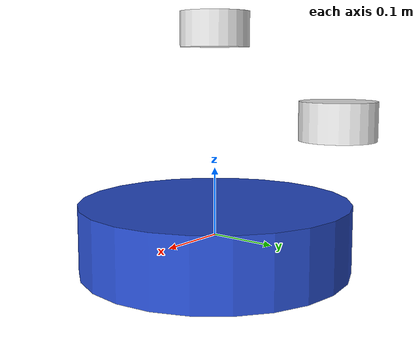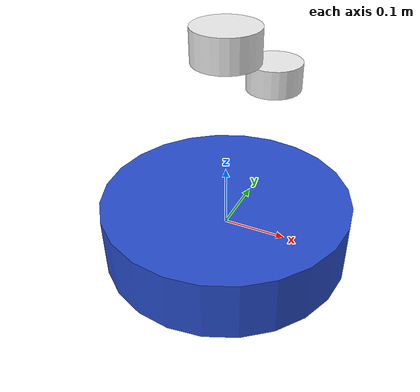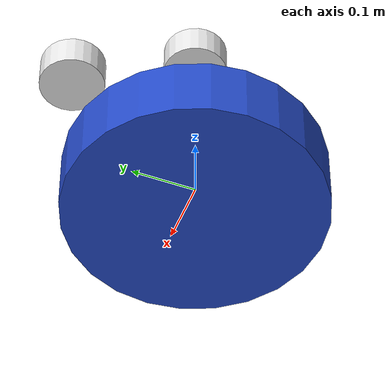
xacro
<?xml version="1.0"?>
<robot name="chuan" xmlns:xacro="http://ros.org/wiki/xacro">

    <link name="base_link">
        <visual>
        <geometry>
            <cylinder length="0.1" radius="0.2"/>
        </geometry>
        <material name="blue"/>
        </visual>
    </link>

    <link name="laser">
        <visual>
        <geometry>
            <cylinder length="0.05" radius="0.05"/>
        </geometry>
        <material name="white"/>
        </visual>
    </link>

    <joint name="laser_to_base_link" type="fixed">
        <parent link="base_link"/>
        <child link="laser"/>
        <origin rpy="0 0 0" xyz="0.0 0.2 0.18"/>
    </joint>

    <link name="gps">
        <visual>
            <geometry>
                <cylinder length="0.05" radius="0.05"/>
            </geometry>
        <material name="white"/>
        </visual>
    </link>

    <joint name="gps_to_base_link" type="fixed">
        <parent link="base_link"/>
        <child link="gps"/>
        <origin rpy="0 0 0" xyz="0.0 0.0 0.3"/>
    </joint>

</robot>
